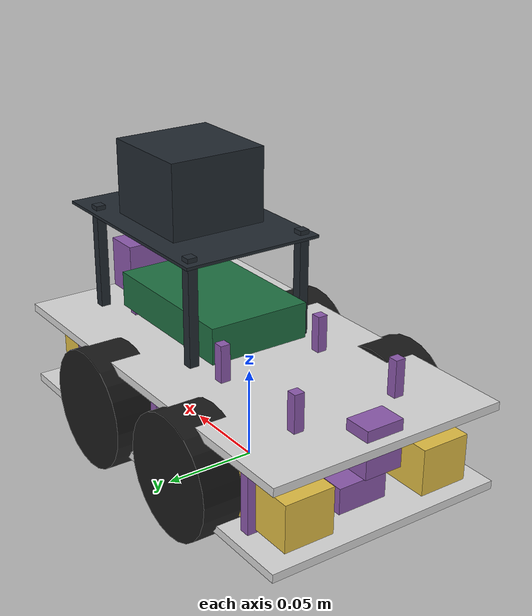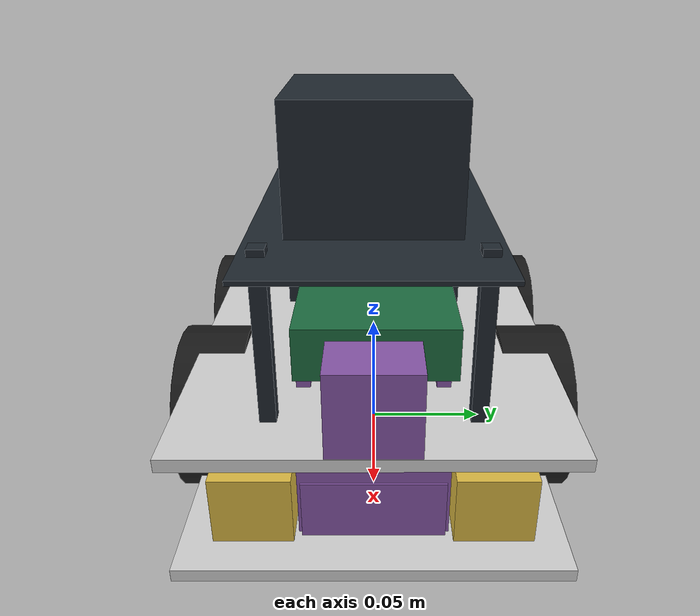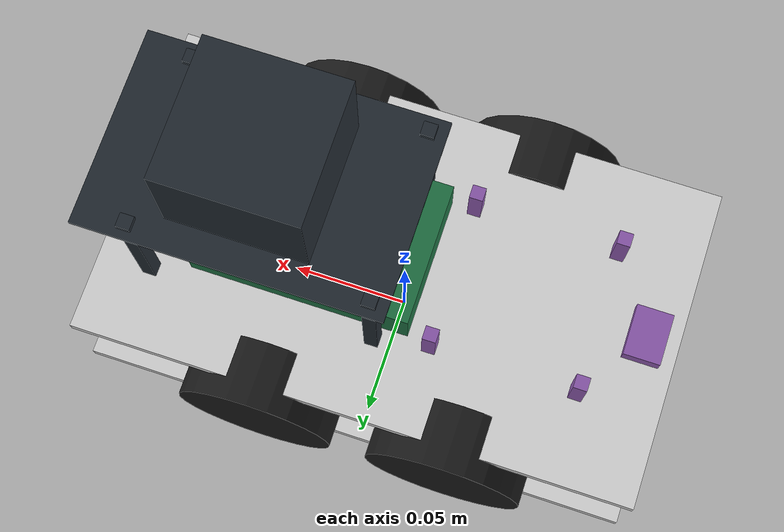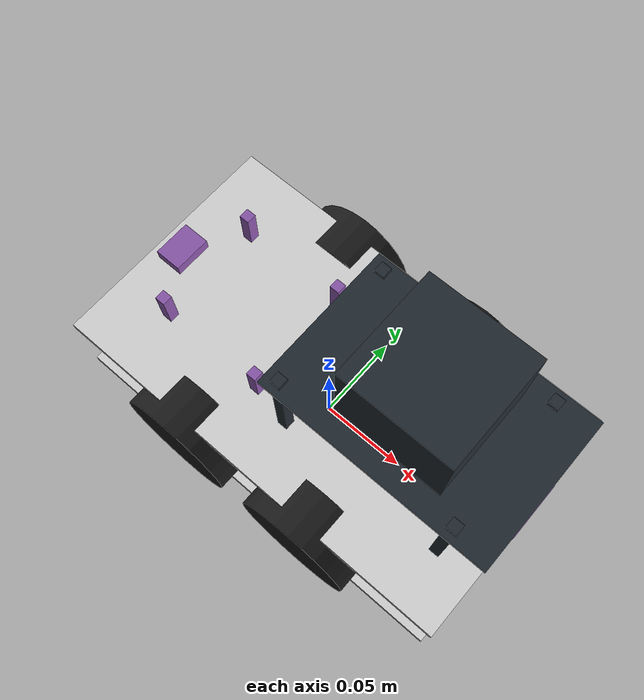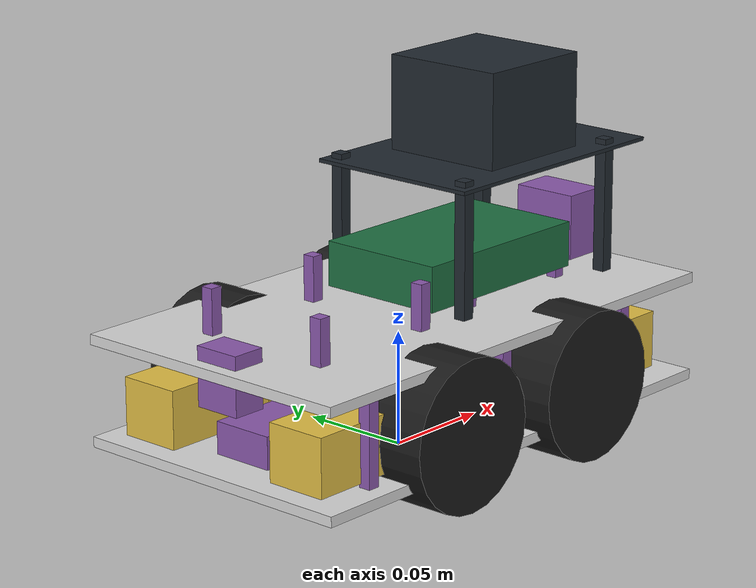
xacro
<?xml version="1.0"?>
<robot name="scout" xmlns:xacro="http://www.ros.org/wiki/xacro">
  <xacro:arg name="use_ros2_control" default="false"/>
  <xacro:arg name="payload" default="false"/>
  <xacro:property name="wheel_radius" value="0.0325"/>
  <xacro:property name="wheel_width" value="0.026"/>
  <xacro:property name="axle_z" value="0.0325"/>
  <xacro:property name="wheel_effort" value="0.1648"/>
  <xacro:property name="wheel_max_vel" value="22.56"/>
  <xacro:macro name="wheel" params="key x y z mass ixx iyy izz">
    <link name="wheel_${key}">
      <inertial>
        <origin xyz="0 0 0" rpy="0 0 0"/>
        <mass value="${mass}"/>
        <inertia ixx="${ixx}" ixy="0" ixz="0" iyy="${iyy}" iyz="0" izz="${izz}"/>
      </inertial>
      <visual>
        <origin xyz="0 0 0" rpy="${pi/2} 0 0"/>
        <geometry><cylinder radius="${wheel_radius}" length="${wheel_width}"/></geometry>
        <material name="rubber"/>
      </visual>
      <collision>
        <origin xyz="0 0 0" rpy="${pi/2} 0 0"/>
        <geometry><cylinder radius="${wheel_radius}" length="${wheel_width}"/></geometry>
      </collision>
    </link>
    <joint name="wheel_${key}_joint" type="continuous">
      <origin xyz="${x} ${y} ${z - axle_z}" rpy="0 0 0"/>
      <parent link="base_link"/>
      <child link="wheel_${key}"/>
      <axis xyz="0 1 0"/>
      <limit effort="${wheel_effort}" velocity="${wheel_max_vel}"/>
      <dynamics damping="0.0" friction="0.0"/>
    </joint>
  </xacro:macro>
  <material name="plate"><color rgba="0.85 0.85 0.85 1"/></material>
  <material name="motor"><color rgba="0.89 0.75 0.27 1"/></material>
  <material name="battery"><color rgba="0.23 0.48 0.84 1"/></material>
  <material name="lidar"><color rgba="0.13 0.16 0.19 1"/></material>
  <material name="pi5"><color rgba="0.12 0.44 0.26 1"/></material>
  <material name="default"><color rgba="0.55 0.35 0.68 1"/></material>
  <material name="rubber"><color rgba="0.1 0.1 0.1 1"/></material>
  <link name="base_footprint"/>
  <joint name="base_footprint_joint" type="fixed">
    <origin xyz="0 0 0.0325" rpy="0 0 0"/>
    <parent link="base_footprint"/>
    <child link="base_link"/>
  </joint>
  <link name="base_link">
    <inertial>
      <origin xyz="0.0153803 2.35581e-07 0.0249681" rpy="0 0 0"/>
      <mass value="0.898108"/>
      <inertia ixx="0.00211262" ixy="-5.90936e-07" ixz="-0.00068217" iyy="0.0044873" iyz="-2.23639e-06" izz="0.00381432"/>
    </inertial>
    <visual name="battery">
      <origin xyz="0 0 -0.0067" rpy="0 0 0"/>
      <geometry><box size="0.07 0.05 0.015"/></geometry>
      <material name="battery"/>
    </visual>
    <visual name="bottom_plate">
      <origin xyz="0.002005 -2.5e-06 -0.01645" rpy="0 0 0"/>
      <geometry><box size="0.23078 0.132523 0.0045"/></geometry>
      <material name="plate"/>
    </visual>
    <visual name="buck_5v">
      <origin xyz="0.0507 0 -0.0089" rpy="0 0 0"/>
      <geometry><box size="0.0254 0.0254 0.0106"/></geometry>
      <material name="default"/>
    </visual>
    <visual name="camera">
      <origin xyz="0.105785 0 0.0463845" rpy="0 0 0"/>
      <geometry><box size="0.011569 0.025 0.023339"/></geometry>
      <material name="default"/>
    </visual>
    <visual name="camera_mount">
      <origin xyz="0.107 0 0.044505" rpy="0 0 0"/>
      <geometry><box size="0.02 0.03 0.029"/></geometry>
      <material name="default"/>
    </visual>
    <visual name="cap_buck">
      <origin xyz="0.045 -0.01995 -0.01105" rpy="0 0 0"/>
      <geometry><box size="0.011 0.0063 0.0063"/></geometry>
      <material name="default"/>
    </visual>
    <visual name="cap_driver">
      <origin xyz="-0.004 0 0.017505" rpy="0 0 0"/>
      <geometry><box size="0.01 0.016 0.01"/></geometry>
      <material name="default"/>
    </visual>
    <visual name="deck_pillar_1">
      <origin xyz="-0.0807 -0.0561 0.0056525" rpy="0 0 0"/>
      <geometry><box size="0.0055 0.0055 0.039705"/></geometry>
      <material name="default"/>
    </visual>
    <visual name="deck_pillar_2">
      <origin xyz="-0.0807 0.0559 0.0056525" rpy="0 0 0"/>
      <geometry><box size="0.0055 0.0055 0.039705"/></geometry>
      <material name="default"/>
    </visual>
    <visual name="deck_pillar_3">
      <origin xyz="-0.0007 0.0559 0.0056525" rpy="0 0 0"/>
      <geometry><box size="0.0055 0.0055 0.039705"/></geometry>
      <material name="default"/>
    </visual>
    <visual name="deck_pillar_4">
      <origin xyz="0.0003 -0.0561 0.0056525" rpy="0 0 0"/>
      <geometry><box size="0.0055 0.0055 0.039705"/></geometry>
      <material name="default"/>
    </visual>
    <visual name="deck_pillar_5">
      <origin xyz="0.0844 -0.0523 0.0056525" rpy="0 0 0"/>
      <geometry><box size="0.0055 0.0055 0.039705"/></geometry>
      <material name="default"/>
    </visual>
    <visual name="deck_pillar_6">
      <origin xyz="0.0844 0.0527 0.0056525" rpy="0 0 0"/>
      <geometry><box size="0.0055 0.0055 0.039705"/></geometry>
      <material name="default"/>
    </visual>
    <visual name="esp32">
      <origin xyz="-0.0665 0 -0.00715" rpy="0 0 0"/>
      <geometry><box size="0.055 0.028 0.0141"/></geometry>
      <material name="default"/>
    </visual>
    <visual name="fence_nut_1">
      <origin xyz="-0.020125 0.029875 0.024305" rpy="0 0 0"/>
      <geometry><box size="0.0055 0.0055 0.0024"/></geometry>
      <material name="default"/>
    </visual>
    <visual name="fence_nut_2">
      <origin xyz="-0.020125 -0.029875 0.024305" rpy="0 0 0"/>
      <geometry><box size="0.0055 0.0055 0.0024"/></geometry>
      <material name="default"/>
    </visual>
    <visual name="fence_nut_3">
      <origin xyz="-0.079875 0.029875 0.024305" rpy="0 0 0"/>
      <geometry><box size="0.0055 0.0055 0.0024"/></geometry>
      <material name="default"/>
    </visual>
    <visual name="fence_nut_4">
      <origin xyz="-0.079875 -0.029875 0.024305" rpy="0 0 0"/>
      <geometry><box size="0.0055 0.0055 0.0024"/></geometry>
      <material name="default"/>
    </visual>
    <visual name="fence_post_1">
      <origin xyz="-0.020125 0.029875 0.040005" rpy="0 0 0"/>
      <geometry><box size="0.0055 0.0055 0.02"/></geometry>
      <material name="default"/>
    </visual>
    <visual name="fence_post_2">
      <origin xyz="-0.020125 -0.029875 0.040005" rpy="0 0 0"/>
      <geometry><box size="0.0055 0.0055 0.02"/></geometry>
      <material name="default"/>
    </visual>
    <visual name="fence_post_3">
      <origin xyz="-0.079875 0.029875 0.040005" rpy="0 0 0"/>
      <geometry><box size="0.0055 0.0055 0.02"/></geometry>
      <material name="default"/>
    </visual>
    <visual name="fence_post_4">
      <origin xyz="-0.079875 -0.029875 0.040005" rpy="0 0 0"/>
      <geometry><box size="0.0055 0.0055 0.02"/></geometry>
      <material name="default"/>
    </visual>
    <visual name="front_screw_1">
      <origin xyz="0.11 0.01 0.027905" rpy="0 0 0"/>
      <geometry><box size="0.0055 0.0055 0.0136"/></geometry>
      <material name="default"/>
    </visual>
    <visual name="front_screw_2">
      <origin xyz="0.11 -0.01 0.027905" rpy="0 0 0"/>
      <geometry><box size="0.0055 0.0055 0.0136"/></geometry>
      <material name="default"/>
    </visual>
    <visual name="fuse_holder">
      <origin xyz="0 -0.0375 -0.0092" rpy="0 0 0"/>
      <geometry><box size="0.035 0.013 0.01"/></geometry>
      <material name="default"/>
    </visual>
    <visual name="imu">
      <origin xyz="-0.024 0 0.014255" rpy="0 0 0"/>
      <geometry><box size="0.0212 0.0164 0.0025"/></geometry>
      <material name="default"/>
    </visual>
    <visual name="imu_standoff_1">
      <origin xyz="-0.0164 0.0056 0.020505" rpy="0 0 0"/>
      <geometry><box size="0.005 0.005 0.01"/></geometry>
      <material name="default"/>
    </visual>
    <visual name="imu_standoff_2">
      <origin xyz="-0.0164 -0.0056 0.020505" rpy="0 0 0"/>
      <geometry><box size="0.005 0.005 0.01"/></geometry>
      <material name="default"/>
    </visual>
    <visual name="lidar">
      <origin xyz="0.055 0 0.107255" rpy="0 0 0"/>
      <geometry><box size="0.0556 0.0556 0.0413"/></geometry>
      <material name="lidar"/>
    </visual>
    <visual name="lidar_board">
      <origin xyz="0.055 0 0.085805" rpy="0 0 0"/>
      <geometry><box size="0.12 0.08 0.0016"/></geometry>
      <material name="lidar"/>
    </visual>
    <visual name="lidar_board_screw_1">
      <origin xyz="0.095 0.034 0.087805" rpy="0 0 0"/>
      <geometry><box size="0.0055 0.0055 0.0024"/></geometry>
      <material name="lidar"/>
    </visual>
    <visual name="lidar_board_screw_2">
      <origin xyz="0.095 -0.034 0.087805" rpy="0 0 0"/>
      <geometry><box size="0.0055 0.0055 0.0024"/></geometry>
      <material name="lidar"/>
    </visual>
    <visual name="lidar_board_screw_3">
      <origin xyz="0.002 0.034 0.087805" rpy="0 0 0"/>
      <geometry><box size="0.0055 0.0055 0.0024"/></geometry>
      <material name="lidar"/>
    </visual>
    <visual name="lidar_board_screw_4">
      <origin xyz="0.002 -0.034 0.087805" rpy="0 0 0"/>
      <geometry><box size="0.0055 0.0055 0.0024"/></geometry>
      <material name="lidar"/>
    </visual>
    <visual name="lidar_leg_1">
      <origin xyz="0.095 0.034 0.057505" rpy="0 0 0"/>
      <geometry><box size="0.0055 0.0055 0.055"/></geometry>
      <material name="lidar"/>
    </visual>
    <visual name="lidar_leg_2">
      <origin xyz="0.095 -0.034 0.057505" rpy="0 0 0"/>
      <geometry><box size="0.0055 0.0055 0.055"/></geometry>
      <material name="lidar"/>
    </visual>
    <visual name="lidar_leg_3">
      <origin xyz="0.002 0.034 0.057505" rpy="0 0 0"/>
      <geometry><box size="0.0055 0.0055 0.055"/></geometry>
      <material name="lidar"/>
    </visual>
    <visual name="lidar_leg_4">
      <origin xyz="0.002 -0.034 0.057505" rpy="0 0 0"/>
      <geometry><box size="0.0055 0.0055 0.055"/></geometry>
      <material name="lidar"/>
    </visual>
    <visual name="lidar_leg_screw_1">
      <origin xyz="0.095 0.034 0.024305" rpy="0 0 0"/>
      <geometry><box size="0.0055 0.0055 0.0024"/></geometry>
      <material name="lidar"/>
    </visual>
    <visual name="lidar_leg_screw_2">
      <origin xyz="0.095 -0.034 0.024305" rpy="0 0 0"/>
      <geometry><box size="0.0055 0.0055 0.0024"/></geometry>
      <material name="lidar"/>
    </visual>
    <visual name="lidar_leg_screw_3">
      <origin xyz="0.002 0.034 0.024305" rpy="0 0 0"/>
      <geometry><box size="0.0055 0.0055 0.0024"/></geometry>
      <material name="lidar"/>
    </visual>
    <visual name="lidar_leg_screw_4">
      <origin xyz="0.002 -0.034 0.024305" rpy="0 0 0"/>
      <geometry><box size="0.0055 0.0055 0.0024"/></geometry>
      <material name="lidar"/>
    </visual>
    <visual name="lidar_screw_1">
      <origin xyz="0.0765 0.0215 0.084155" rpy="0 0 0"/>
      <geometry><box size="0.0045 0.0045 0.0017"/></geometry>
      <material name="lidar"/>
    </visual>
    <visual name="lidar_screw_2">
      <origin xyz="0.0765 -0.0215 0.084155" rpy="0 0 0"/>
      <geometry><box size="0.0045 0.0045 0.0017"/></geometry>
      <material name="lidar"/>
    </visual>
    <visual name="lidar_screw_3">
      <origin xyz="0.0335 0.0215 0.084155" rpy="0 0 0"/>
      <geometry><box size="0.0045 0.0045 0.0017"/></geometry>
      <material name="lidar"/>
    </visual>
    <visual name="lidar_screw_4">
      <origin xyz="0.0335 -0.0215 0.084155" rpy="0 0 0"/>
      <geometry><box size="0.0045 0.0045 0.0017"/></geometry>
      <material name="lidar"/>
    </visual>
    <visual name="mdd3a">
      <origin xyz="0.028 0 0.014205" rpy="0 0 0"/>
      <geometry><box size="0.04826 0.04166 0.0126"/></geometry>
      <material name="default"/>
    </visual>
    <visual name="mdd3a_standoff_1">
      <origin xyz="0.04959 0.01829 0.023005" rpy="0 0 0"/>
      <geometry><box size="0.005 0.005 0.005"/></geometry>
      <material name="default"/>
    </visual>
    <visual name="mdd3a_standoff_2">
      <origin xyz="0.04959 -0.01829 0.023005" rpy="0 0 0"/>
      <geometry><box size="0.005 0.005 0.005"/></geometry>
      <material name="default"/>
    </visual>
    <visual name="mdd3a_standoff_3">
      <origin xyz="0.00641 0.01829 0.023005" rpy="0 0 0"/>
      <geometry><box size="0.005 0.005 0.005"/></geometry>
      <material name="default"/>
    </visual>
    <visual name="mdd3a_standoff_4">
      <origin xyz="0.00641 -0.01829 0.023005" rpy="0 0 0"/>
      <geometry><box size="0.005 0.005 0.005"/></geometry>
      <material name="default"/>
    </visual>
    <visual name="motor_bracket_fl">
      <origin xyz="0.0616 0.0247 -0.0002" rpy="0 0 0"/>
      <geometry><box size="0.012 0.005 0.022"/></geometry>
      <material name="motor"/>
    </visual>
    <visual name="motor_bracket_fr">
      <origin xyz="0.0616 -0.0247 -0.0002" rpy="0 0 0"/>
      <geometry><box size="0.012 0.005 0.022"/></geometry>
      <material name="motor"/>
    </visual>
    <visual name="motor_bracket_rl">
      <origin xyz="-0.0616 0.0247 -0.0002" rpy="0 0 0"/>
      <geometry><box size="0.012 0.005 0.022"/></geometry>
      <material name="motor"/>
    </visual>
    <visual name="motor_bracket_rr">
      <origin xyz="-0.0616 -0.0247 -0.0002" rpy="0 0 0"/>
      <geometry><box size="0.012 0.005 0.022"/></geometry>
      <material name="motor"/>
    </visual>
    <visual name="motor_fl">
      <origin xyz="0.065925 0.0405625 0" rpy="0 0 0"/>
      <geometry><box size="0.07995 0.027375 0.0252"/></geometry>
      <material name="motor"/>
    </visual>
    <visual name="motor_fr">
      <origin xyz="0.065925 -0.0405625 0" rpy="0 0 0"/>
      <geometry><box size="0.07995 0.027375 0.0252"/></geometry>
      <material name="motor"/>
    </visual>
    <visual name="motor_rl">
      <origin xyz="-0.065925 0.0405625 0" rpy="0 0 0"/>
      <geometry><box size="0.07995 0.027375 0.0252"/></geometry>
      <material name="motor"/>
    </visual>
    <visual name="motor_rr">
      <origin xyz="-0.065925 -0.0405625 0" rpy="0 0 0"/>
      <geometry><box size="0.07995 0.027375 0.0252"/></geometry>
      <material name="motor"/>
    </visual>
    <visual name="motor_spacer_fl">
      <origin xyz="0.0616 0.0255 -0.0127" rpy="0 0 0"/>
      <geometry><box size="0.0138 0.006 0.003"/></geometry>
      <material name="motor"/>
    </visual>
    <visual name="motor_spacer_fr">
      <origin xyz="0.0616 -0.0255 -0.0127" rpy="0 0 0"/>
      <geometry><box size="0.0138 0.006 0.003"/></geometry>
      <material name="motor"/>
    </visual>
    <visual name="motor_spacer_rl">
      <origin xyz="-0.0616 0.0255 -0.0127" rpy="0 0 0"/>
      <geometry><box size="0.0138 0.006 0.003"/></geometry>
      <material name="motor"/>
    </visual>
    <visual name="motor_spacer_rr">
      <origin xyz="-0.0616 -0.0255 -0.0127" rpy="0 0 0"/>
      <geometry><box size="0.0138 0.006 0.003"/></geometry>
      <material name="motor"/>
    </visual>
    <visual name="pi5">
      <origin xyz="0.0342 0.0008315 0.04396" rpy="0 0 0"/>
      <geometry><box size="0.09 0.057663 0.01979"/></geometry>
      <material name="pi5"/>
    </visual>
    <visual name="pi5_cooler">
      <origin xyz="0.045 0 0.042405" rpy="0 0 0"/>
      <geometry><box size="0.0635 0.0425 0.01"/></geometry>
      <material name="pi5"/>
    </visual>
    <visual name="pi_screw_1">
      <origin xyz="0.074 0.0245 0.024655" rpy="0 0 0"/>
      <geometry><box size="0.0045 0.0045 0.0017"/></geometry>
      <material name="default"/>
    </visual>
    <visual name="pi_screw_2">
      <origin xyz="0.074 -0.0245 0.024655" rpy="0 0 0"/>
      <geometry><box size="0.0045 0.0045 0.0017"/></geometry>
      <material name="default"/>
    </visual>
    <visual name="pi_screw_3">
      <origin xyz="0.016 0.0245 0.024655" rpy="0 0 0"/>
      <geometry><box size="0.0045 0.0045 0.0017"/></geometry>
      <material name="default"/>
    </visual>
    <visual name="pi_screw_4">
      <origin xyz="0.016 -0.0245 0.024655" rpy="0 0 0"/>
      <geometry><box size="0.0045 0.0045 0.0017"/></geometry>
      <material name="default"/>
    </visual>
    <visual name="pi_standoff_1">
      <origin xyz="0.074 0.0245 0.033005" rpy="0 0 0"/>
      <geometry><box size="0.005 0.005 0.006"/></geometry>
      <material name="default"/>
    </visual>
    <visual name="pi_standoff_2">
      <origin xyz="0.074 -0.0245 0.033005" rpy="0 0 0"/>
      <geometry><box size="0.005 0.005 0.006"/></geometry>
      <material name="default"/>
    </visual>
    <visual name="pi_standoff_3">
      <origin xyz="0.016 0.0245 0.033005" rpy="0 0 0"/>
      <geometry><box size="0.005 0.005 0.006"/></geometry>
      <material name="default"/>
    </visual>
    <visual name="pi_standoff_4">
      <origin xyz="0.016 -0.0245 0.033005" rpy="0 0 0"/>
      <geometry><box size="0.005 0.005 0.006"/></geometry>
      <material name="default"/>
    </visual>
    <visual name="switch">
      <origin xyz="-0.1 0 0.023255" rpy="0 0 0"/>
      <geometry><box size="0.015 0.021 0.0255"/></geometry>
      <material name="default"/>
    </visual>
    <visual name="top_plate">
      <origin xyz="0.0020045 -2.5e-06 0.027755" rpy="0 0 0"/>
      <geometry><box size="0.230779 0.132523 0.0045"/></geometry>
      <material name="plate"/>
    </visual>
    <visual name="ultrasonic">
      <origin xyz="0.1101 0 0.010505" rpy="0 0 0"/>
      <geometry><box size="0.0136 0.045 0.02"/></geometry>
      <material name="default"/>
    </visual>
    <visual name="ultrasonic_bracket">
      <origin xyz="0.1088 0 0.013505" rpy="0 0 0"/>
      <geometry><box size="0.015 0.047 0.024"/></geometry>
      <material name="default"/>
    </visual>
    <visual name="xt30">
      <origin xyz="0 0.036 -0.0116" rpy="0 0 0"/>
      <geometry><box size="0.025 0.01 0.0052"/></geometry>
      <material name="default"/>
    </visual>
    <collision name="battery">
      <origin xyz="0 0 -0.0067" rpy="0 0 0"/>
      <geometry><box size="0.07 0.05 0.015"/></geometry>
    </collision>
    <collision name="bottom_plate">
      <origin xyz="0.002005 -2.5e-06 -0.01645" rpy="0 0 0"/>
      <geometry><box size="0.23078 0.132523 0.0045"/></geometry>
    </collision>
    <collision name="buck_5v">
      <origin xyz="0.0507 0 -0.0089" rpy="0 0 0"/>
      <geometry><box size="0.0254 0.0254 0.0106"/></geometry>
    </collision>
    <collision name="camera">
      <origin xyz="0.105785 0 0.0463845" rpy="0 0 0"/>
      <geometry><box size="0.011569 0.025 0.023339"/></geometry>
    </collision>
    <collision name="camera_mount">
      <origin xyz="0.107 0 0.044505" rpy="0 0 0"/>
      <geometry><box size="0.02 0.03 0.029"/></geometry>
    </collision>
    <collision name="cap_buck">
      <origin xyz="0.045 -0.01995 -0.01105" rpy="0 0 0"/>
      <geometry><box size="0.011 0.0063 0.0063"/></geometry>
    </collision>
    <collision name="cap_driver">
      <origin xyz="-0.004 0 0.017505" rpy="0 0 0"/>
      <geometry><box size="0.01 0.016 0.01"/></geometry>
    </collision>
    <collision name="deck_pillar_1">
      <origin xyz="-0.0807 -0.0561 0.0056525" rpy="0 0 0"/>
      <geometry><box size="0.0055 0.0055 0.039705"/></geometry>
    </collision>
    <collision name="deck_pillar_2">
      <origin xyz="-0.0807 0.0559 0.0056525" rpy="0 0 0"/>
      <geometry><box size="0.0055 0.0055 0.039705"/></geometry>
    </collision>
    <collision name="deck_pillar_3">
      <origin xyz="-0.0007 0.0559 0.0056525" rpy="0 0 0"/>
      <geometry><box size="0.0055 0.0055 0.039705"/></geometry>
    </collision>
    <collision name="deck_pillar_4">
      <origin xyz="0.0003 -0.0561 0.0056525" rpy="0 0 0"/>
      <geometry><box size="0.0055 0.0055 0.039705"/></geometry>
    </collision>
    <collision name="deck_pillar_5">
      <origin xyz="0.0844 -0.0523 0.0056525" rpy="0 0 0"/>
      <geometry><box size="0.0055 0.0055 0.039705"/></geometry>
    </collision>
    <collision name="deck_pillar_6">
      <origin xyz="0.0844 0.0527 0.0056525" rpy="0 0 0"/>
      <geometry><box size="0.0055 0.0055 0.039705"/></geometry>
    </collision>
    <collision name="esp32">
      <origin xyz="-0.0665 0 -0.00715" rpy="0 0 0"/>
      <geometry><box size="0.055 0.028 0.0141"/></geometry>
    </collision>
    <collision name="fence_nut_1">
      <origin xyz="-0.020125 0.029875 0.024305" rpy="0 0 0"/>
      <geometry><box size="0.0055 0.0055 0.0024"/></geometry>
    </collision>
    <collision name="fence_nut_2">
      <origin xyz="-0.020125 -0.029875 0.024305" rpy="0 0 0"/>
      <geometry><box size="0.0055 0.0055 0.0024"/></geometry>
    </collision>
    <collision name="fence_nut_3">
      <origin xyz="-0.079875 0.029875 0.024305" rpy="0 0 0"/>
      <geometry><box size="0.0055 0.0055 0.0024"/></geometry>
    </collision>
    <collision name="fence_nut_4">
      <origin xyz="-0.079875 -0.029875 0.024305" rpy="0 0 0"/>
      <geometry><box size="0.0055 0.0055 0.0024"/></geometry>
    </collision>
    <collision name="fence_post_1">
      <origin xyz="-0.020125 0.029875 0.040005" rpy="0 0 0"/>
      <geometry><box size="0.0055 0.0055 0.02"/></geometry>
    </collision>
    <collision name="fence_post_2">
      <origin xyz="-0.020125 -0.029875 0.040005" rpy="0 0 0"/>
      <geometry><box size="0.0055 0.0055 0.02"/></geometry>
    </collision>
    <collision name="fence_post_3">
      <origin xyz="-0.079875 0.029875 0.040005" rpy="0 0 0"/>
      <geometry><box size="0.0055 0.0055 0.02"/></geometry>
    </collision>
    <collision name="fence_post_4">
      <origin xyz="-0.079875 -0.029875 0.040005" rpy="0 0 0"/>
      <geometry><box size="0.0055 0.0055 0.02"/></geometry>
    </collision>
    <collision name="front_screw_1">
      <origin xyz="0.11 0.01 0.027905" rpy="0 0 0"/>
      <geometry><box size="0.0055 0.0055 0.0136"/></geometry>
    </collision>
    <collision name="front_screw_2">
      <origin xyz="0.11 -0.01 0.027905" rpy="0 0 0"/>
      <geometry><box size="0.0055 0.0055 0.0136"/></geometry>
    </collision>
    <collision name="fuse_holder">
      <origin xyz="0 -0.0375 -0.0092" rpy="0 0 0"/>
      <geometry><box size="0.035 0.013 0.01"/></geometry>
    </collision>
    <collision name="imu">
      <origin xyz="-0.024 0 0.014255" rpy="0 0 0"/>
      <geometry><box size="0.0212 0.0164 0.0025"/></geometry>
    </collision>
    <collision name="imu_standoff_1">
      <origin xyz="-0.0164 0.0056 0.020505" rpy="0 0 0"/>
      <geometry><box size="0.005 0.005 0.01"/></geometry>
    </collision>
    <collision name="imu_standoff_2">
      <origin xyz="-0.0164 -0.0056 0.020505" rpy="0 0 0"/>
      <geometry><box size="0.005 0.005 0.01"/></geometry>
    </collision>
    <collision name="lidar">
      <origin xyz="0.055 0 0.107255" rpy="0 0 0"/>
      <geometry><box size="0.0556 0.0556 0.0413"/></geometry>
    </collision>
    <collision name="lidar_board">
      <origin xyz="0.055 0 0.085805" rpy="0 0 0"/>
      <geometry><box size="0.12 0.08 0.0016"/></geometry>
    </collision>
    <collision name="lidar_board_screw_1">
      <origin xyz="0.095 0.034 0.087805" rpy="0 0 0"/>
      <geometry><box size="0.0055 0.0055 0.0024"/></geometry>
    </collision>
    <collision name="lidar_board_screw_2">
      <origin xyz="0.095 -0.034 0.087805" rpy="0 0 0"/>
      <geometry><box size="0.0055 0.0055 0.0024"/></geometry>
    </collision>
    <collision name="lidar_board_screw_3">
      <origin xyz="0.002 0.034 0.087805" rpy="0 0 0"/>
      <geometry><box size="0.0055 0.0055 0.0024"/></geometry>
    </collision>
    <collision name="lidar_board_screw_4">
      <origin xyz="0.002 -0.034 0.087805" rpy="0 0 0"/>
      <geometry><box size="0.0055 0.0055 0.0024"/></geometry>
    </collision>
    <collision name="lidar_leg_1">
      <origin xyz="0.095 0.034 0.057505" rpy="0 0 0"/>
      <geometry><box size="0.0055 0.0055 0.055"/></geometry>
    </collision>
    <collision name="lidar_leg_2">
      <origin xyz="0.095 -0.034 0.057505" rpy="0 0 0"/>
      <geometry><box size="0.0055 0.0055 0.055"/></geometry>
    </collision>
    <collision name="lidar_leg_3">
      <origin xyz="0.002 0.034 0.057505" rpy="0 0 0"/>
      <geometry><box size="0.0055 0.0055 0.055"/></geometry>
    </collision>
    <collision name="lidar_leg_4">
      <origin xyz="0.002 -0.034 0.057505" rpy="0 0 0"/>
      <geometry><box size="0.0055 0.0055 0.055"/></geometry>
    </collision>
    <collision name="lidar_leg_screw_1">
      <origin xyz="0.095 0.034 0.024305" rpy="0 0 0"/>
      <geometry><box size="0.0055 0.0055 0.0024"/></geometry>
    </collision>
    <collision name="lidar_leg_screw_2">
      <origin xyz="0.095 -0.034 0.024305" rpy="0 0 0"/>
      <geometry><box size="0.0055 0.0055 0.0024"/></geometry>
    </collision>
    <collision name="lidar_leg_screw_3">
      <origin xyz="0.002 0.034 0.024305" rpy="0 0 0"/>
      <geometry><box size="0.0055 0.0055 0.0024"/></geometry>
    </collision>
    <collision name="lidar_leg_screw_4">
      <origin xyz="0.002 -0.034 0.024305" rpy="0 0 0"/>
      <geometry><box size="0.0055 0.0055 0.0024"/></geometry>
    </collision>
    <collision name="lidar_screw_1">
      <origin xyz="0.0765 0.0215 0.084155" rpy="0 0 0"/>
      <geometry><box size="0.0045 0.0045 0.0017"/></geometry>
    </collision>
    <collision name="lidar_screw_2">
      <origin xyz="0.0765 -0.0215 0.084155" rpy="0 0 0"/>
      <geometry><box size="0.0045 0.0045 0.0017"/></geometry>
    </collision>
    <collision name="lidar_screw_3">
      <origin xyz="0.0335 0.0215 0.084155" rpy="0 0 0"/>
      <geometry><box size="0.0045 0.0045 0.0017"/></geometry>
    </collision>
    <collision name="lidar_screw_4">
      <origin xyz="0.0335 -0.0215 0.084155" rpy="0 0 0"/>
      <geometry><box size="0.0045 0.0045 0.0017"/></geometry>
    </collision>
    <collision name="mdd3a">
      <origin xyz="0.028 0 0.014205" rpy="0 0 0"/>
      <geometry><box size="0.04826 0.04166 0.0126"/></geometry>
    </collision>
    <collision name="mdd3a_standoff_1">
      <origin xyz="0.04959 0.01829 0.023005" rpy="0 0 0"/>
      <geometry><box size="0.005 0.005 0.005"/></geometry>
    </collision>
    <collision name="mdd3a_standoff_2">
      <origin xyz="0.04959 -0.01829 0.023005" rpy="0 0 0"/>
      <geometry><box size="0.005 0.005 0.005"/></geometry>
    </collision>
    <collision name="mdd3a_standoff_3">
      <origin xyz="0.00641 0.01829 0.023005" rpy="0 0 0"/>
      <geometry><box size="0.005 0.005 0.005"/></geometry>
    </collision>
    <collision name="mdd3a_standoff_4">
      <origin xyz="0.00641 -0.01829 0.023005" rpy="0 0 0"/>
      <geometry><box size="0.005 0.005 0.005"/></geometry>
    </collision>
    <collision name="motor_bracket_fl">
      <origin xyz="0.0616 0.0247 -0.0002" rpy="0 0 0"/>
      <geometry><box size="0.012 0.005 0.022"/></geometry>
    </collision>
    <collision name="motor_bracket_fr">
      <origin xyz="0.0616 -0.0247 -0.0002" rpy="0 0 0"/>
      <geometry><box size="0.012 0.005 0.022"/></geometry>
    </collision>
    <collision name="motor_bracket_rl">
      <origin xyz="-0.0616 0.0247 -0.0002" rpy="0 0 0"/>
      <geometry><box size="0.012 0.005 0.022"/></geometry>
    </collision>
    <collision name="motor_bracket_rr">
      <origin xyz="-0.0616 -0.0247 -0.0002" rpy="0 0 0"/>
      <geometry><box size="0.012 0.005 0.022"/></geometry>
    </collision>
    <collision name="motor_fl">
      <origin xyz="0.065925 0.0405625 0" rpy="0 0 0"/>
      <geometry><box size="0.07995 0.027375 0.0252"/></geometry>
    </collision>
    <collision name="motor_fr">
      <origin xyz="0.065925 -0.0405625 0" rpy="0 0 0"/>
      <geometry><box size="0.07995 0.027375 0.0252"/></geometry>
    </collision>
    <collision name="motor_rl">
      <origin xyz="-0.065925 0.0405625 0" rpy="0 0 0"/>
      <geometry><box size="0.07995 0.027375 0.0252"/></geometry>
    </collision>
    <collision name="motor_rr">
      <origin xyz="-0.065925 -0.0405625 0" rpy="0 0 0"/>
      <geometry><box size="0.07995 0.027375 0.0252"/></geometry>
    </collision>
    <collision name="motor_spacer_fl">
      <origin xyz="0.0616 0.0255 -0.0127" rpy="0 0 0"/>
      <geometry><box size="0.0138 0.006 0.003"/></geometry>
    </collision>
    <collision name="motor_spacer_fr">
      <origin xyz="0.0616 -0.0255 -0.0127" rpy="0 0 0"/>
      <geometry><box size="0.0138 0.006 0.003"/></geometry>
    </collision>
    <collision name="motor_spacer_rl">
      <origin xyz="-0.0616 0.0255 -0.0127" rpy="0 0 0"/>
      <geometry><box size="0.0138 0.006 0.003"/></geometry>
    </collision>
    <collision name="motor_spacer_rr">
      <origin xyz="-0.0616 -0.0255 -0.0127" rpy="0 0 0"/>
      <geometry><box size="0.0138 0.006 0.003"/></geometry>
    </collision>
    <collision name="pi5">
      <origin xyz="0.0342 0.0008315 0.04396" rpy="0 0 0"/>
      <geometry><box size="0.09 0.057663 0.01979"/></geometry>
    </collision>
    <collision name="pi5_cooler">
      <origin xyz="0.045 0 0.042405" rpy="0 0 0"/>
      <geometry><box size="0.0635 0.0425 0.01"/></geometry>
    </collision>
    <collision name="pi_screw_1">
      <origin xyz="0.074 0.0245 0.024655" rpy="0 0 0"/>
      <geometry><box size="0.0045 0.0045 0.0017"/></geometry>
    </collision>
    <collision name="pi_screw_2">
      <origin xyz="0.074 -0.0245 0.024655" rpy="0 0 0"/>
      <geometry><box size="0.0045 0.0045 0.0017"/></geometry>
    </collision>
    <collision name="pi_screw_3">
      <origin xyz="0.016 0.0245 0.024655" rpy="0 0 0"/>
      <geometry><box size="0.0045 0.0045 0.0017"/></geometry>
    </collision>
    <collision name="pi_screw_4">
      <origin xyz="0.016 -0.0245 0.024655" rpy="0 0 0"/>
      <geometry><box size="0.0045 0.0045 0.0017"/></geometry>
    </collision>
    <collision name="pi_standoff_1">
      <origin xyz="0.074 0.0245 0.033005" rpy="0 0 0"/>
      <geometry><box size="0.005 0.005 0.006"/></geometry>
    </collision>
    <collision name="pi_standoff_2">
      <origin xyz="0.074 -0.0245 0.033005" rpy="0 0 0"/>
      <geometry><box size="0.005 0.005 0.006"/></geometry>
    </collision>
    <collision name="pi_standoff_3">
      <origin xyz="0.016 0.0245 0.033005" rpy="0 0 0"/>
      <geometry><box size="0.005 0.005 0.006"/></geometry>
    </collision>
    <collision name="pi_standoff_4">
      <origin xyz="0.016 -0.0245 0.033005" rpy="0 0 0"/>
      <geometry><box size="0.005 0.005 0.006"/></geometry>
    </collision>
    <collision name="switch">
      <origin xyz="-0.1 0 0.023255" rpy="0 0 0"/>
      <geometry><box size="0.015 0.021 0.0255"/></geometry>
    </collision>
    <collision name="top_plate">
      <origin xyz="0.0020045 -2.5e-06 0.027755" rpy="0 0 0"/>
      <geometry><box size="0.230779 0.132523 0.0045"/></geometry>
    </collision>
    <collision name="ultrasonic">
      <origin xyz="0.1101 0 0.010505" rpy="0 0 0"/>
      <geometry><box size="0.0136 0.045 0.02"/></geometry>
    </collision>
    <collision name="ultrasonic_bracket">
      <origin xyz="0.1088 0 0.013505" rpy="0 0 0"/>
      <geometry><box size="0.015 0.047 0.024"/></geometry>
    </collision>
    <collision name="xt30">
      <origin xyz="0 0.036 -0.0116" rpy="0 0 0"/>
      <geometry><box size="0.025 0.01 0.0052"/></geometry>
    </collision>
  </link>
  <xacro:wheel key="fl" x="0.04" y="0.062" z="0.0325" mass="0.025" ixx="8e-06" iyy="1.3e-05" izz="8e-06"/>
  <xacro:wheel key="fr" x="0.04" y="-0.062" z="0.0325" mass="0.025" ixx="8e-06" iyy="1.3e-05" izz="8e-06"/>
  <xacro:wheel key="rl" x="-0.04" y="0.062" z="0.0325" mass="0.025" ixx="8e-06" iyy="1.3e-05" izz="8e-06"/>
  <xacro:wheel key="rr" x="-0.04" y="-0.062" z="0.0325" mass="0.025" ixx="8e-06" iyy="1.3e-05" izz="8e-06"/>
  <link name="laser_link"/>
  <joint name="laser_joint" type="fixed">
    <origin xyz="0.055 0 0.116405" rpy="0 0 0"/>
    <parent link="base_link"/>
    <child link="laser_link"/>
  </joint>
  <link name="camera_link"/>
  <joint name="camera_joint" type="fixed">
    <origin xyz="0.11047 0 0.04711" rpy="0 0.261799 0"/>
    <parent link="base_link"/>
    <child link="camera_link"/>
  </joint>
  <link name="camera_optical_link"/>
  <joint name="camera_optical_joint" type="fixed">
    <origin xyz="0 0 0" rpy="-1.5708 0 -1.5708"/>
    <parent link="camera_link"/>
    <child link="camera_optical_link"/>
  </joint>
  <link name="imu_link"/>
  <joint name="imu_joint" type="fixed">
    <origin xyz="-0.024 0 0.013455" rpy="3.14159 0 0"/>
    <parent link="base_link"/>
    <child link="imu_link"/>
  </joint>
  <link name="ultrasonic_link"/>
  <joint name="ultrasonic_joint" type="fixed">
    <origin xyz="0.1169 0 0.010505" rpy="0 0 0"/>
    <parent link="base_link"/>
    <child link="ultrasonic_link"/>
  </joint>
  <xacro:if value="$(arg payload)">
  <link name="payload">
    <inertial>
      <origin xyz="0 0 0" rpy="0 0 0"/>
      <mass value="0.3"/>
      <inertia ixx="0.000265" ixy="0" ixz="-0" iyy="0.000265" iyz="0" izz="0.000211"/>
    </inertial>
    <visual>
      <geometry><cylinder radius="0.0375" length="0.08"/></geometry>
      <material name="default"/>
    </visual>
    <collision>
      <geometry><cylinder radius="0.0375" length="0.08"/></geometry>
    </collision>
  </link>
  <joint name="payload_joint" type="fixed">
    <origin xyz="-0.05 0 0.070005" rpy="0 0 0"/>
    <parent link="base_link"/>
    <child link="payload"/>
  </joint>
  </xacro:if>

  <xacro:if value="$(arg use_ros2_control)">
    <ros2_control name="ScoutSystem" type="system">
      <hardware>
        <plugin>scout_hardware/ScoutEsp32System</plugin>  <!-- placeholder, not implemented -->
      </hardware>
      <joint name="wheel_fl_joint">
        <command_interface name="velocity"><param name="min">-${wheel_max_vel}</param><param name="max">${wheel_max_vel}</param></command_interface>
        <state_interface name="position"/>
        <state_interface name="velocity"/>
      </joint>
      <joint name="wheel_fr_joint">
        <command_interface name="velocity"><param name="min">-${wheel_max_vel}</param><param name="max">${wheel_max_vel}</param></command_interface>
        <state_interface name="position"/>
        <state_interface name="velocity"/>
      </joint>
      <joint name="wheel_rl_joint">
        <command_interface name="velocity"><param name="min">-${wheel_max_vel}</param><param name="max">${wheel_max_vel}</param></command_interface>
        <state_interface name="position"/>
        <state_interface name="velocity"/>
      </joint>
      <joint name="wheel_rr_joint">
        <command_interface name="velocity"><param name="min">-${wheel_max_vel}</param><param name="max">${wheel_max_vel}</param></command_interface>
        <state_interface name="position"/>
        <state_interface name="velocity"/>
      </joint>
    </ros2_control>
  </xacro:if>
</robot>
